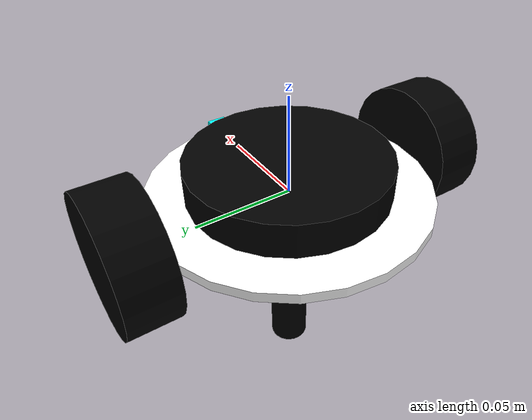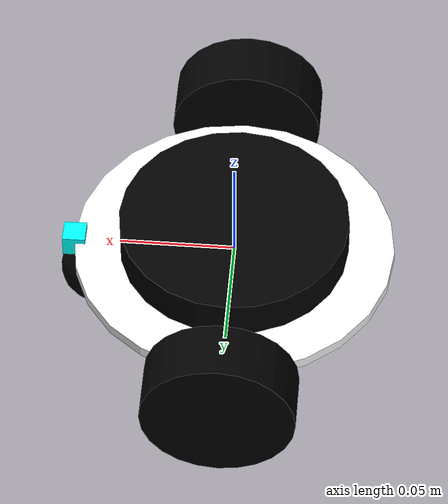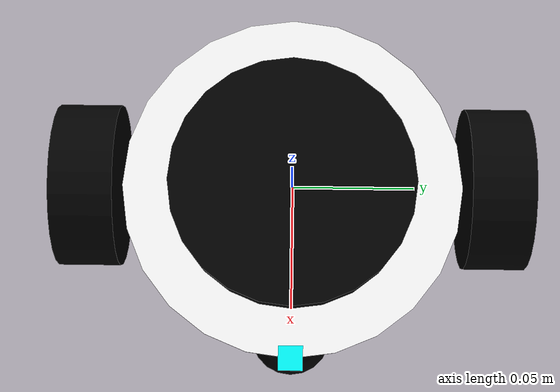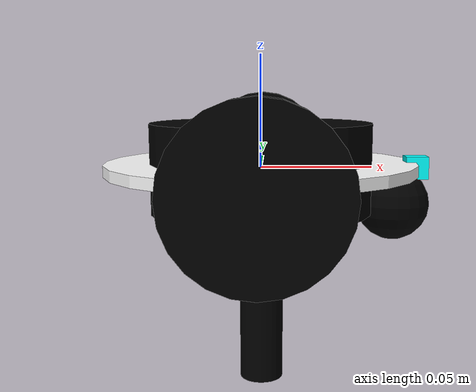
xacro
<?xml version="1.0"?>
<robot xmlns:xacro="http://www.ros.org/wiki/xacro" name="robot">

    <xacro:include filename="robot_core.xacro"/>
    <xacro:if value="$(arg is_sim)">
        <xacro:include filename="gazebo/gazebo.xacro"/>
        <xacro:include filename="gazebo/gazebo_control.xacro"/>
        <xacro:include filename="gazebo/sonar.xacro"/>
        <xacro:include filename="gazebo/imu.xacro"/>
        <xacro:include filename="gazebo/lidar.xacro"/>
    </xacro:if>
    <xacro:unless value="$(arg is_sim)">
        <xacro:include filename="ros2_control.xacro"/>
    </xacro:unless>

</robot>

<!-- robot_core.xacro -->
<robot xmlns:xacro="http://www.ros.org/wiki/xacro">
    <xacro:arg name="is_sim" default="true"/>

    <xacro:include filename="gazebo/common_inertias.xacro"/>

    <xacro:property name="disc_height" value="0.005"/>
    <xacro:property name="disc_radius" value="0.07"/>
    <xacro:property name="disc_mass" value="0.05"/>

    <xacro:property name="wheel_width" value="0.025"/>
    <xacro:property name="wheel_radius" value="0.033"/>
    <xacro:property name="wheel_mass" value="0.01"/>

    <xacro:property name="caster_wheel_radius" value="${wheel_radius/2}"/>
    <xacro:property name="caster_wheel_mass" value="0.01"/>
    <xacro:property name="caster_wheel_offset_x" value="0.06"/>
    <xacro:property name="caster_wheel_offset_z" value="${caster_wheel_radius}"/>

    <xacro:property name="sonar_size" value="0.01"/>
    <xacro:property name="sonar_mass" value="0.01"/>

    <xacro:property name="imu_size" value="0.01"/>
    <xacro:property name="imu_mass" value="0.01"/>

    <material name="white">
        <color rgba="1.0 1.0 1.0 1.0"/>
    </material>

    <material name="orange">
        <color rgba="1 0.3 0.1 1"/>
    </material>

    <material name="black">
        <color rgba="0 0 0 1"/>
    </material>

    <material name="blue">
        <color rgba="0 1 1 1"/>
    </material>

    <material name="red">
        <color rgba="0.596078431372549 0.0 0.00784313725490196 1.0"/>
    </material>

    <xacro:macro name="wheel" params="prefix y_reflect">
        <link name="${prefix}_wheel">
            <visual>
                <origin xyz="0 0 0" rpy="${pi/2} 0 0"/>
                <geometry>
                    <cylinder radius="${wheel_radius}" length="${wheel_width}"/>
                </geometry>
                <material name="black"/>
            </visual>
            <collision>
                <origin xyz="0 0 0" rpy="${pi/2} 0 0"/>
                <geometry>
                    <cylinder radius="${wheel_radius}" length="${wheel_width}"/>
                </geometry>
            </collision>
            <xacro:cylinder_inertial mass="${wheel_mass}" radius="${wheel_radius}" length="${wheel_width}"
                                     rotation="${pi/2}"/>
        </link>

        <joint name="${prefix}_wheel_joint" type="continuous">
            <parent link="base_link"/>
            <child link="${prefix}_wheel"/>
            <origin xyz="0 ${y_reflect*(disc_radius+(wheel_width/2))} 0" rpy="0 0 0"/>
            <axis xyz="0 1 0"/>
        </joint>
    </xacro:macro>

    <link name="base_link">
        <xacro:cylinder_inertial mass="${disc_mass}" radius="${disc_radius}" length="${disc_height}" rotation="0"/>
        <visual>
            <origin xyz="0 0 0" rpy="0 0 0"/>
            <geometry>
                <cylinder radius="${disc_radius}" length="${disc_height}"/>
            </geometry>

            <material name="white"/>
        </visual>
        <collision>
            <origin xyz="0 0 0" rpy="0 0 0"/>
            <geometry>
                <cylinder radius="${disc_radius}" length="${disc_height}"/>
            </geometry>
        </collision>
    </link>

    <link name="base_footprint"/>
    <joint name="base_footprint_joint" type="fixed">
        <parent link="base_link"/>
        <child link="base_footprint"/>
        <origin xyz="0 0 0" rpy="0 0 0"/>
    </joint>

    <xacro:wheel prefix="left" y_reflect="1"/>
    <xacro:wheel prefix="right" y_reflect="-1"/>

    <link name="caster_wheel">
        <visual>
            <geometry>
                <sphere radius="${caster_wheel_radius}"/>
            </geometry>
            <material name="black"/>
        </visual>
        <collision>
            <geometry>
                <sphere radius="${caster_wheel_radius}"/>
            </geometry>
        </collision>
        <xacro:sphere_inertial radius="${caster_wheel_radius}" mass="${caster_wheel_mass}">
            <origin xyz="0 0 0" rpy="0 0 0"/>
        </xacro:sphere_inertial>
    </link>

    <joint name="caster_wheel_joint" type="fixed">
        <parent link="base_link"/>
        <child link="caster_wheel"/>
        <origin xyz="${caster_wheel_offset_x} 0 -${caster_wheel_offset_z}"/>
    </joint>

    <link name="sonar_link">
        <visual>
            <geometry>
                <box size="${sonar_size} ${sonar_size} ${sonar_size}"/>
            </geometry>
            <material name="blue"/>
        </visual>
        <collision>
            <geometry>
                <box size="${sonar_size} ${sonar_size} ${sonar_size}"/>
            </geometry>
        </collision>
        <xacro:box_inertial x="${sonar_size}" y="${sonar_size}" z="${sonar_size}" mass="${sonar_mass}"/>
    </link>

    <joint name="sonar_link_joint" type="fixed">
        <parent link="base_link"/>
        <child link="sonar_link"/>
        <origin xyz="${disc_radius} 0 0"/>
    </joint>

    <link name="imu_link">
        <xacro:box_inertial mass="${imu_mass}" x="${imu_size}" y="${imu_size}" z="${imu_size}"/>
        <visual>
            <origin xyz="0 0 0" rpy="0 0 0"/>
            <geometry>
                <box size="${imu_size} ${imu_size} ${imu_size}"/>
            </geometry>
            <material name="red"/>
        </visual>
        <collision>
            <origin xyz="0 0 0" rpy="0 0 0"/>
            <geometry>
                <box size="${imu_size} ${imu_size} ${imu_size}"/>
            </geometry>
        </collision>
    </link>

    <joint name="imu_joint" type="fixed">
        <origin xyz="0 0 0" rpy="0 0 0"/>
        <parent link="base_link"/>
        <child link="imu_link"/>
        <axis xyz="0 0 0"/>
    </joint>

    <link name="lidar_link">
        <visual>
            <geometry>
                <cylinder radius="0.05" length="0.04"/>
            </geometry>
            <material name="black"/>
        </visual>
        <visual>
            <origin xyz="0 0 -0.05"/>
            <geometry>
                <cylinder radius="0.01" length="0.1"/>
            </geometry>
            <material name="black"/>
        </visual>
        <collision>
            <geometry>
                <cylinder radius="0.05" length="0.04"/>
            </geometry>
        </collision>
        <xacro:cylinder_inertial mass="0.1" radius="0.04" length="0.05" rotation="0"/>
    </link>

    <joint name="lidar_joint" type="fixed">
        <origin xyz="0 0 0" rpy="0 0 0"/>
        <parent link="base_link"/>
        <child link="lidar_link"/>
        <axis xyz="0 0 0"/>
    </joint>

</robot>

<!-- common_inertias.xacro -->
<robot xmlns:xacro="http://www.ros.org/wiki/xacro">

    <!-- see https://secure.wikimedia.org/wikipedia/en/wiki/List_of_moment_of_inertia_tensors -->
    <xacro:macro name="sphere_inertial" params="radius mass *origin">
        <inertial>
            <mass value="${mass}"/>
            <xacro:insert_block name="origin"/>
            <inertia ixx="${2.0/5 * mass * radius * radius}" ixy="0.0" ixz="0.0"
                     iyy="${2.0/5 * mass * radius * radius}" iyz="0.0"
                     izz="${2.0/5 * mass * radius * radius}"/>
        </inertial>
    </xacro:macro>

    <xacro:macro name="cylinder_inertial" params="radius length mass rotation">
        <inertial>
            <origin xyz="0 0 0" rpy="${rotation} 0 0"/>
            <mass value="${mass}"/>
            <inertia ixx="${1.0/12 * mass * (3 * radius * radius + length * length)}" ixy="0.0" ixz="0.0"
                     iyy="${1.0/12 * mass * (3 * radius * radius + length * length)}" iyz="0.0"
                     izz="${1.0/2 * mass * radius * radius}"/>
        </inertial>
    </xacro:macro>

    <xacro:macro name="box_inertial" params="x y z mass ">
        <inertial>
            <mass value="${mass}"/>
            <inertia ixx="${1.0/12 * mass * (y*y + z*z)}" ixy="0.0" ixz="0.0"
                     iyy="${1.0/12 * mass * (x*x + z*z)}" iyz="0.0"
                     izz="${1.0/12 * mass * (x*x + y*y)}"/>
        </inertial>
    </xacro:macro>

    <xacro:macro name="spherical_cap_inertial" params="r h mass *origin">
        <inertial>
            <mass value="${mass}"/>
            <xacro:insert_block name="origin"/>
            <inertia
                    ixx="${(-3*h*h*h/20+3*h*h*r/4-4*h*r*r/3+r*r*r)*3*mass/(3*r-h)+(3/4*(h-2*r)*(h-2*r)/(3*r-h))*(3/4*(h-2*r)*(h-2*r)/(3*r-h))}"
                    ixy="0.0" ixz="0.0"
                    iyy="${(-3*h*h*h/20+3*h*h*r/4-4*h*r*r/3+r*r*r)*3*mass/(3*r-h)+(3/4*(h-2*r)*(h-2*r)/(3*r-h))*(3/4*(h-2*r)*(h-2*r)/(3*r-h))}"
                    iyz="0.0"
                    izz="${mass*h/(10*(3*r-h))*(3*h*h-15*h*r+20*r*r)}"/>
            <origin></origin>
        </inertial>
    </xacro:macro>

    <xacro:macro name="hollow_spherical_cap_inertial" params="r h t mass *origin">
        <inertial>
            <mass value="${mass}"/>
            <xacro:insert_block name="origin"/>
            <inertia
                    ixx="${mass/20*(20*h*h*h*r-10*h*h*h*t-60*h*h*r*r+30*h*h*r*t+120*h*r*r*r-120*h*r*r*t+60*h*r*t*t-15*h*t*t*t-60*r*r*r*t+100*r*r*t*t-65*r*t*t*t+16*t*t*t*t)/(2*t*t*-3*r*t-3*h*t+6*h*r)+(3/4*(t-2*r)*(2*r*r-4*r*r+2*r*t-t*t)/(6*r*r-3*r*t-3*r*t+2*t*t))*(3/4*(t-2*r)*(2*r*r-4*r*r+2*r*t-t*t)/(6*r*r-3*r*t-3*r*t+2*t*t))}"
                    ixy="0.0" ixz="0.0"
                    iyy="${mass/20*(20*h*h*h*r-10*h*h*h*t-60*h*h*r*r+30*h*h*r*t+120*h*r*r*r-120*h*r*r*t+60*h*r*t*t-15*h*t*t*t-60*r*r*r*t+100*r*r*t*t-65*r*t*t*t+16*t*t*t*t)/(2*t*t*-3*r*t-3*h*t+6*h*r)+(3/4*(t-2*r)*(2*r*r-4*r*r+2*r*t-t*t)/(6*r*r-3*r*t-3*r*t+2*t*t))*(3/4*(t-2*r)*(2*r*r-4*r*r+2*r*t-t*t)/(6*r*r-3*r*t-3*r*t+2*t*t))}"
                    iyz="0.0"
                    izz="${mass/(10*(2*t*t-3*r*t-3*h*t+6*h*r))*(-20*h*h*h*r+10*h*h*h*t+60*h*h*r*r-30*h*h*r*t-60*h*r*r*t+60*h*r*t*t-15*h*t*t*t+20*r*r*t*t-25*r*t*t*t+8*t*t*t*t)}"/>
        </inertial>
    </xacro:macro>

    <xacro:macro name="default_inertial">
        <inertial>
            <mass value="0.01"/>
            <origin xyz="0 0 0"/>
            <inertia ixx="0.001" ixy="0.0" ixz="0.0" iyy="0.001" iyz="0.0" izz="0.001"/>
        </inertial>
    </xacro:macro>

</robot>

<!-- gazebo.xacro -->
<robot xmlns:xacro="http://www.ros.org/wiki/xacro">
    <xacro:property name="silver" value="Gazebo/Silver"/>
    <xacro:property name="black" value="Gazebo/Black"/>

    <gazebo reference="base_link">
        <material>${silver}</material>
        <mu1>0.2</mu1>
        <mu2>0.2</mu2>
        <self_collide>true</self_collide>
        <gravity>true</gravity>
    </gazebo>

    <gazebo reference="front_left_wheel">
        <material>${black}</material>
        <mu1>0.2</mu1>
        <mu2>0.2</mu2>
        <self_collide>true</self_collide>
    </gazebo>

    <gazebo reference="rear_left_wheel">
        <material>${black}</material>
        <mu1>0.2</mu1>
        <mu2>0.2</mu2>
        <self_collide>true</self_collide>
    </gazebo>

    <gazebo reference="rear_right_wheel">
        <material>${black}</material>
        <mu1>0.2</mu1>
        <mu2>0.2</mu2>
        <self_collide>true</self_collide>
    </gazebo>

    <gazebo reference="front_right_wheel">
        <material>${black}</material>
        <mu1>0.2</mu1>
        <mu2>0.2</mu2>
        <self_collide>true</self_collide>
    </gazebo>

    <gazebo reference="lidar_link">
        <material>${black}</material>
        <mu1>0.2</mu1>
        <mu2>0.2</mu2>
        <self_collide>true</self_collide>
    </gazebo>
</robot>
